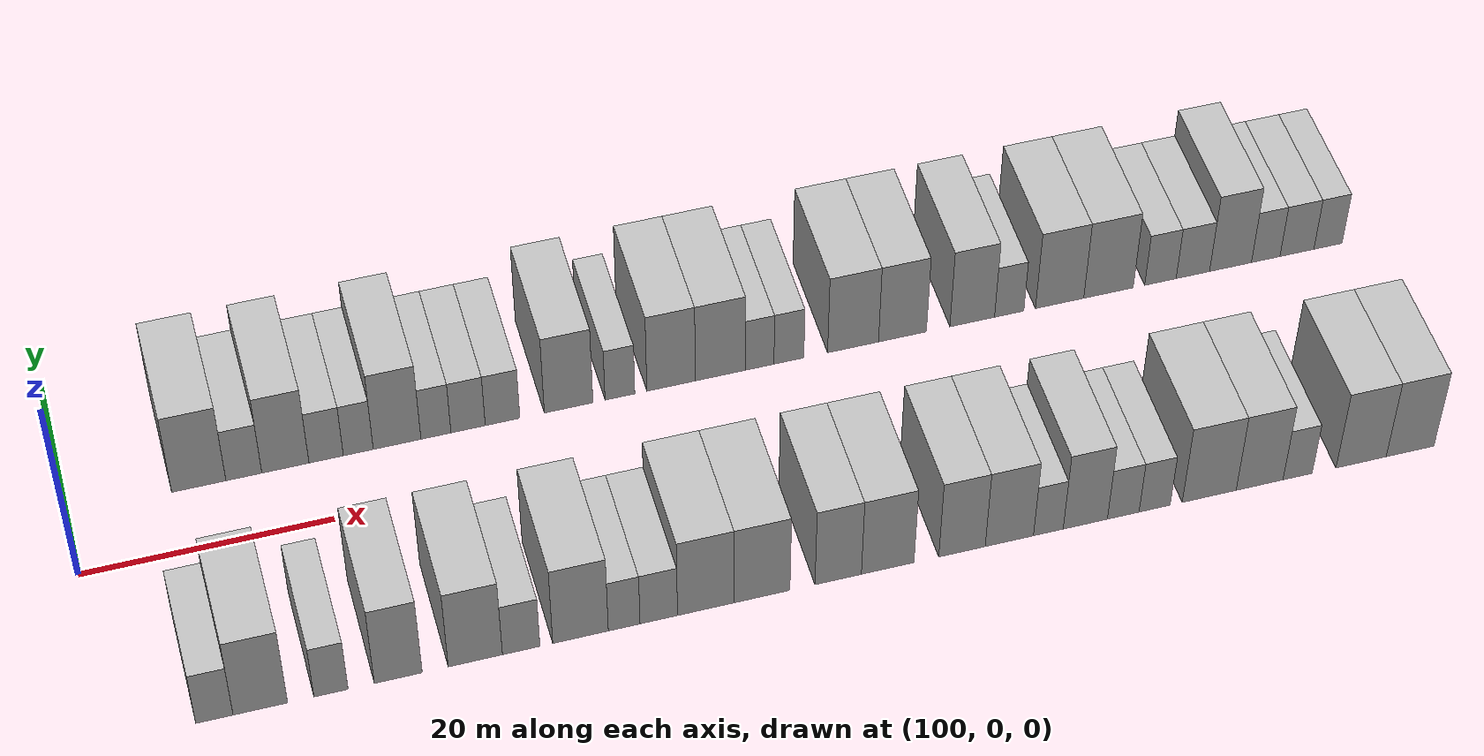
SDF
<sdf version="1.6">
 <world name="default">
  <model name="building_27">
   <static>1</static>
   <pose>110.3880 11.0000 0 0.000000 0.000000 1.570796</pose>
   <link name="link">
    <pose>0 0 4.50 0 0 0</pose>
    <collision name="collision"><geometry><box><size>10.0000 4.3013 9.0000</size></box></geometry></collision>
    <visual name="visual">
     <cast_shadows>0</cast_shadows>
     <geometry><box><size>10.0000 4.3013 9.0000</size></box></geometry>
     <material>
      <script>
       <uri>model://HANNAS_wall/materials/scripts</uri>
       <uri>model://HANNAS_wall/materials/textures</uri>
       <name>vrc/HANNAS_wall</name>
      </script>
     </material>
    </visual>
   </link>
  </model>
  <model name="building_28">
   <static>1</static>
   <pose>113.9667 11.0000 0 0.000000 0.000000 1.570796</pose>
   <link name="link">
    <pose>0 0 3.00 0 0 0</pose>
    <collision name="collision"><geometry><box><size>10.0000 2.8562 6.0000</size></box></geometry></collision>
    <visual name="visual">
     <cast_shadows>0</cast_shadows>
     <geometry><box><size>10.0000 2.8562 6.0000</size></box></geometry>
     <material>
      <script>
       <uri>model://HANNAS_wall/materials/scripts</uri>
       <uri>model://HANNAS_wall/materials/textures</uri>
       <name>vrc/HANNAS_wall</name>
      </script>
     </material>
    </visual>
   </link>
  </model>
  <model name="building_29">
   <static>1</static>
   <pose>117.2774 11.0000 0 0.000000 0.000000 1.570796</pose>
   <link name="link">
    <pose>0 0 4.50 0 0 0</pose>
    <collision name="collision"><geometry><box><size>10.0000 3.7653 9.0000</size></box></geometry></collision>
    <visual name="visual">
     <cast_shadows>0</cast_shadows>
     <geometry><box><size>10.0000 3.7653 9.0000</size></box></geometry>
     <material>
      <script>
       <uri>model://HANNAS_wall/materials/scripts</uri>
       <uri>model://HANNAS_wall/materials/textures</uri>
       <name>vrc/HANNAS_wall</name>
      </script>
     </material>
    </visual>
   </link>
  </model>
  <model name="building_30">
   <static>1</static>
   <pose>120.5377 11.0000 0 0.000000 0.000000 1.570796</pose>
   <link name="link">
    <pose>0 0 3.00 0 0 0</pose>
    <collision name="collision"><geometry><box><size>10.0000 2.7552 6.0000</size></box></geometry></collision>
    <visual name="visual">
     <cast_shadows>0</cast_shadows>
     <geometry><box><size>10.0000 2.7552 6.0000</size></box></geometry>
     <material>
      <script>
       <uri>model://HANNAS_wall/materials/scripts</uri>
       <uri>model://HANNAS_wall/materials/textures</uri>
       <name>vrc/HANNAS_wall</name>
      </script>
     </material>
    </visual>
   </link>
  </model>
  <model name="building_31">
   <static>1</static>
   <pose>123.1191 11.0000 0 0.000000 0.000000 1.570796</pose>
   <link name="link">
    <pose>0 0 3.00 0 0 0</pose>
    <collision name="collision"><geometry><box><size>10.0000 2.4076 6.0000</size></box></geometry></collision>
    <visual name="visual">
     <cast_shadows>0</cast_shadows>
     <geometry><box><size>10.0000 2.4076 6.0000</size></box></geometry>
     <material>
      <script>
       <uri>model://HANNAS_wall/materials/scripts</uri>
       <uri>model://HANNAS_wall/materials/textures</uri>
       <name>vrc/HANNAS_wall</name>
      </script>
     </material>
    </visual>
   </link>
  </model>
  <model name="building_32">
   <static>1</static>
   <pose>126.2458 11.0000 0 0.000000 0.000000 1.570796</pose>
   <link name="link">
    <pose>0 0 4.50 0 0 0</pose>
    <collision name="collision"><geometry><box><size>10.0000 3.8459 9.0000</size></box></geometry></collision>
    <visual name="visual">
     <cast_shadows>0</cast_shadows>
     <geometry><box><size>10.0000 3.8459 9.0000</size></box></geometry>
     <material>
      <script>
       <uri>model://HANNAS_wall/materials/scripts</uri>
       <uri>model://HANNAS_wall/materials/textures</uri>
       <name>vrc/HANNAS_wall</name>
      </script>
     </material>
    </visual>
   </link>
  </model>
  <model name="building_33">
   <static>1</static>
   <pose>129.3854 11.0000 0 0.000000 0.000000 1.570796</pose>
   <link name="link">
    <pose>0 0 3.00 0 0 0</pose>
    <collision name="collision"><geometry><box><size>10.0000 2.4332 6.0000</size></box></geometry></collision>
    <visual name="visual">
     <cast_shadows>0</cast_shadows>
     <geometry><box><size>10.0000 2.4332 6.0000</size></box></geometry>
     <material>
      <script>
       <uri>model://HANNAS_wall/materials/scripts</uri>
       <uri>model://HANNAS_wall/materials/textures</uri>
       <name>vrc/HANNAS_wall</name>
      </script>
     </material>
    </visual>
   </link>
  </model>
  <model name="building_34">
   <static>1</static>
   <pose>131.9970 11.0000 0 0.000000 0.000000 1.570796</pose>
   <link name="link">
    <pose>0 0 3.00 0 0 0</pose>
    <collision name="collision"><geometry><box><size>10.0000 2.7901 6.0000</size></box></geometry></collision>
    <visual name="visual">
     <cast_shadows>0</cast_shadows>
     <geometry><box><size>10.0000 2.7901 6.0000</size></box></geometry>
     <material>
      <script>
       <uri>model://HANNAS_wall/materials/scripts</uri>
       <uri>model://HANNAS_wall/materials/textures</uri>
       <name>vrc/HANNAS_wall</name>
      </script>
     </material>
    </visual>
   </link>
  </model>
  <model name="building_35">
   <static>1</static>
   <pose>134.8009 11.0000 0 0.000000 0.000000 1.570796</pose>
   <link name="link">
    <pose>0 0 3.00 0 0 0</pose>
    <collision name="collision"><geometry><box><size>10.0000 2.8178 6.0000</size></box></geometry></collision>
    <visual name="visual">
     <cast_shadows>0</cast_shadows>
     <geometry><box><size>10.0000 2.8178 6.0000</size></box></geometry>
     <material>
      <script>
       <uri>model://HANNAS_wall/materials/scripts</uri>
       <uri>model://HANNAS_wall/materials/textures</uri>
       <name>vrc/HANNAS_wall</name>
      </script>
     </material>
    </visual>
   </link>
  </model>
  <model name="building_36">
   <static>1</static>
   <pose>140.2035 11.0000 0 0.000000 0.000000 1.570796</pose>
   <link name="link">
    <pose>0 0 4.50 0 0 0</pose>
    <collision name="collision"><geometry><box><size>10.0000 3.9875 9.0000</size></box></geometry></collision>
    <visual name="visual">
     <cast_shadows>0</cast_shadows>
     <geometry><box><size>10.0000 3.9875 9.0000</size></box></geometry>
     <material>
      <script>
       <uri>model://HANNAS_wall/materials/scripts</uri>
       <uri>model://HANNAS_wall/materials/textures</uri>
       <name>vrc/HANNAS_wall</name>
      </script>
     </material>
    </visual>
   </link>
  </model>
  <model name="building_37">
   <static>1</static>
   <pose>144.4245 11.0000 0 0.000000 0.000000 1.570796</pose>
   <link name="link">
    <pose>0 0 3.00 0 0 0</pose>
    <collision name="collision"><geometry><box><size>10.0000 2.4544 6.0000</size></box></geometry></collision>
    <visual name="visual">
     <cast_shadows>0</cast_shadows>
     <geometry><box><size>10.0000 2.4544 6.0000</size></box></geometry>
     <material>
      <script>
       <uri>model://HANNAS_wall/materials/scripts</uri>
       <uri>model://HANNAS_wall/materials/textures</uri>
       <name>vrc/HANNAS_wall</name>
      </script>
     </material>
    </visual>
   </link>
  </model>
  <model name="building_38">
   <static>1</static>
   <pose>148.6582 11.0000 0 0.000000 0.000000 1.570796</pose>
   <link name="link">
    <pose>0 0 4.50 0 0 0</pose>
    <collision name="collision"><geometry><box><size>10.0000 4.0130 9.0000</size></box></geometry></collision>
    <visual name="visual">
     <cast_shadows>0</cast_shadows>
     <geometry><box><size>10.0000 4.0130 9.0000</size></box></geometry>
     <material>
      <script>
       <uri>model://HANNAS_wall/materials/scripts</uri>
       <uri>model://HANNAS_wall/materials/textures</uri>
       <name>vrc/HANNAS_wall</name>
      </script>
     </material>
    </visual>
   </link>
  </model>
  <model name="building_39">
   <static>1</static>
   <pose>152.7411 11.0000 0 0.000000 0.000000 1.570796</pose>
   <link name="link">
    <pose>0 0 4.50 0 0 0</pose>
    <collision name="collision"><geometry><box><size>10.0000 4.1529 9.0000</size></box></geometry></collision>
    <visual name="visual">
     <cast_shadows>0</cast_shadows>
     <geometry><box><size>10.0000 4.1529 9.0000</size></box></geometry>
     <material>
      <script>
       <uri>model://HANNAS_wall/materials/scripts</uri>
       <uri>model://HANNAS_wall/materials/textures</uri>
       <name>vrc/HANNAS_wall</name>
      </script>
     </material>
    </visual>
   </link>
  </model>
  <model name="building_40">
   <static>1</static>
   <pose>156.0200 11.0000 0 0.000000 0.000000 1.570796</pose>
   <link name="link">
    <pose>0 0 3.00 0 0 0</pose>
    <collision name="collision"><geometry><box><size>10.0000 2.4048 6.0000</size></box></geometry></collision>
    <visual name="visual">
     <cast_shadows>0</cast_shadows>
     <geometry><box><size>10.0000 2.4048 6.0000</size></box></geometry>
     <material>
      <script>
       <uri>model://HANNAS_wall/materials/scripts</uri>
       <uri>model://HANNAS_wall/materials/textures</uri>
       <name>vrc/HANNAS_wall</name>
      </script>
     </material>
    </visual>
   </link>
  </model>
  <model name="building_41">
   <static>1</static>
   <pose>158.4744 11.0000 0 0.000000 0.000000 1.570796</pose>
   <link name="link">
    <pose>0 0 3.00 0 0 0</pose>
    <collision name="collision"><geometry><box><size>10.0000 2.5041 6.0000</size></box></geometry></collision>
    <visual name="visual">
     <cast_shadows>0</cast_shadows>
     <geometry><box><size>10.0000 2.5041 6.0000</size></box></geometry>
     <material>
      <script>
       <uri>model://HANNAS_wall/materials/scripts</uri>
       <uri>model://HANNAS_wall/materials/textures</uri>
       <name>vrc/HANNAS_wall</name>
      </script>
     </material>
    </visual>
   </link>
  </model>
  <model name="building_42">
   <static>1</static>
   <pose>163.8748 11.0000 0 0.000000 0.000000 1.570796</pose>
   <link name="link">
    <pose>0 0 4.50 0 0 0</pose>
    <collision name="collision"><geometry><box><size>10.0000 4.2967 9.0000</size></box></geometry></collision>
    <visual name="visual">
     <cast_shadows>0</cast_shadows>
     <geometry><box><size>10.0000 4.2967 9.0000</size></box></geometry>
     <material>
      <script>
       <uri>model://HANNAS_wall/materials/scripts</uri>
       <uri>model://HANNAS_wall/materials/textures</uri>
       <name>vrc/HANNAS_wall</name>
      </script>
     </material>
    </visual>
   </link>
  </model>
  <model name="building_43">
   <static>1</static>
   <pose>168.0531 11.0000 0 0.000000 0.000000 1.570796</pose>
   <link name="link">
    <pose>0 0 4.50 0 0 0</pose>
    <collision name="collision"><geometry><box><size>10.0000 4.0599 9.0000</size></box></geometry></collision>
    <visual name="visual">
     <cast_shadows>0</cast_shadows>
     <geometry><box><size>10.0000 4.0599 9.0000</size></box></geometry>
     <material>
      <script>
       <uri>model://HANNAS_wall/materials/scripts</uri>
       <uri>model://HANNAS_wall/materials/textures</uri>
       <name>vrc/HANNAS_wall</name>
      </script>
     </material>
    </visual>
   </link>
  </model>
  <model name="building_44">
   <static>1</static>
   <pose>173.9898 11.0000 0 0.000000 0.000000 1.570796</pose>
   <link name="link">
    <pose>0 0 4.50 0 0 0</pose>
    <collision name="collision"><geometry><box><size>10.0000 3.8136 9.0000</size></box></geometry></collision>
    <visual name="visual">
     <cast_shadows>0</cast_shadows>
     <geometry><box><size>10.0000 3.8136 9.0000</size></box></geometry>
     <material>
      <script>
       <uri>model://HANNAS_wall/materials/scripts</uri>
       <uri>model://HANNAS_wall/materials/textures</uri>
       <name>vrc/HANNAS_wall</name>
      </script>
     </material>
    </visual>
   </link>
  </model>
  <model name="building_45">
   <static>1</static>
   <pose>177.1504 11.0000 0 0.000000 0.000000 1.570796</pose>
   <link name="link">
    <pose>0 0 3.00 0 0 0</pose>
    <collision name="collision"><geometry><box><size>10.0000 2.5077 6.0000</size></box></geometry></collision>
    <visual name="visual">
     <cast_shadows>0</cast_shadows>
     <geometry><box><size>10.0000 2.5077 6.0000</size></box></geometry>
     <material>
      <script>
       <uri>model://HANNAS_wall/materials/scripts</uri>
       <uri>model://HANNAS_wall/materials/textures</uri>
       <name>vrc/HANNAS_wall</name>
      </script>
     </material>
    </visual>
   </link>
  </model>
  <model name="building_46">
   <static>1</static>
   <pose>181.4870 11.0000 0 0.000000 0.000000 1.570796</pose>
   <link name="link">
    <pose>0 0 4.50 0 0 0</pose>
    <collision name="collision"><geometry><box><size>10.0000 4.1655 9.0000</size></box></geometry></collision>
    <visual name="visual">
     <cast_shadows>0</cast_shadows>
     <geometry><box><size>10.0000 4.1655 9.0000</size></box></geometry>
     <material>
      <script>
       <uri>model://HANNAS_wall/materials/scripts</uri>
       <uri>model://HANNAS_wall/materials/textures</uri>
       <name>vrc/HANNAS_wall</name>
      </script>
     </material>
    </visual>
   </link>
  </model>
  <model name="building_47">
   <static>1</static>
   <pose>185.7066 11.0000 0 0.000000 0.000000 1.570796</pose>
   <link name="link">
    <pose>0 0 4.50 0 0 0</pose>
    <collision name="collision"><geometry><box><size>10.0000 4.2737 9.0000</size></box></geometry></collision>
    <visual name="visual">
     <cast_shadows>0</cast_shadows>
     <geometry><box><size>10.0000 4.2737 9.0000</size></box></geometry>
     <material>
      <script>
       <uri>model://HANNAS_wall/materials/scripts</uri>
       <uri>model://HANNAS_wall/materials/textures</uri>
       <name>vrc/HANNAS_wall</name>
      </script>
     </material>
    </visual>
   </link>
  </model>
  <model name="building_48">
   <static>1</static>
   <pose>190.2126 11.0000 0 0.000000 0.000000 1.570796</pose>
   <link name="link">
    <pose>0 0 3.00 0 0 0</pose>
    <collision name="collision"><geometry><box><size>10.0000 2.7381 6.0000</size></box></geometry></collision>
    <visual name="visual">
     <cast_shadows>0</cast_shadows>
     <geometry><box><size>10.0000 2.7381 6.0000</size></box></geometry>
     <material>
      <script>
       <uri>model://HANNAS_wall/materials/scripts</uri>
       <uri>model://HANNAS_wall/materials/textures</uri>
       <name>vrc/HANNAS_wall</name>
      </script>
     </material>
    </visual>
   </link>
  </model>
  <model name="building_49">
   <static>1</static>
   <pose>193.0391 11.0000 0 0.000000 0.000000 1.570796</pose>
   <link name="link">
    <pose>0 0 3.00 0 0 0</pose>
    <collision name="collision"><geometry><box><size>10.0000 2.9150 6.0000</size></box></geometry></collision>
    <visual name="visual">
     <cast_shadows>0</cast_shadows>
     <geometry><box><size>10.0000 2.9150 6.0000</size></box></geometry>
     <material>
      <script>
       <uri>model://HANNAS_wall/materials/scripts</uri>
       <uri>model://HANNAS_wall/materials/textures</uri>
       <name>vrc/HANNAS_wall</name>
      </script>
     </material>
    </visual>
   </link>
  </model>
  <model name="building_50">
   <static>1</static>
   <pose>196.3330 11.0000 0 0.000000 0.000000 1.570796</pose>
   <link name="link">
    <pose>0 0 4.50 0 0 0</pose>
    <collision name="collision"><geometry><box><size>10.0000 3.6728 9.0000</size></box></geometry></collision>
    <visual name="visual">
     <cast_shadows>0</cast_shadows>
     <geometry><box><size>10.0000 3.6728 9.0000</size></box></geometry>
     <material>
      <script>
       <uri>model://HANNAS_wall/materials/scripts</uri>
       <uri>model://HANNAS_wall/materials/textures</uri>
       <name>vrc/HANNAS_wall</name>
      </script>
     </material>
    </visual>
   </link>
  </model>
  <model name="building_51">
   <static>1</static>
   <pose>199.4239 11.0000 0 0.000000 0.000000 1.570796</pose>
   <link name="link">
    <pose>0 0 3.00 0 0 0</pose>
    <collision name="collision"><geometry><box><size>10.0000 2.5091 6.0000</size></box></geometry></collision>
    <visual name="visual">
     <cast_shadows>0</cast_shadows>
     <geometry><box><size>10.0000 2.5091 6.0000</size></box></geometry>
     <material>
      <script>
       <uri>model://HANNAS_wall/materials/scripts</uri>
       <uri>model://HANNAS_wall/materials/textures</uri>
       <name>vrc/HANNAS_wall</name>
      </script>
     </material>
    </visual>
   </link>
  </model>
  <model name="building_52">
   <static>1</static>
   <pose>202.1742 11.0000 0 0.000000 0.000000 1.570796</pose>
   <link name="link">
    <pose>0 0 3.00 0 0 0</pose>
    <collision name="collision"><geometry><box><size>10.0000 2.9915 6.0000</size></box></geometry></collision>
    <visual name="visual">
     <cast_shadows>0</cast_shadows>
     <geometry><box><size>10.0000 2.9915 6.0000</size></box></geometry>
     <material>
      <script>
       <uri>model://HANNAS_wall/materials/scripts</uri>
       <uri>model://HANNAS_wall/materials/textures</uri>
       <name>vrc/HANNAS_wall</name>
      </script>
     </material>
    </visual>
   </link>
  </model>
  <model name="building_53">
   <static>1</static>
   <pose>204.9138 11.0000 0 0.000000 0.000000 1.570796</pose>
   <link name="link">
    <pose>0 0 3.00 0 0 0</pose>
    <collision name="collision"><geometry><box><size>10.0000 2.4877 6.0000</size></box></geometry></collision>
    <visual name="visual">
     <cast_shadows>0</cast_shadows>
     <geometry><box><size>10.0000 2.4877 6.0000</size></box></geometry>
     <material>
      <script>
       <uri>model://HANNAS_wall/materials/scripts</uri>
       <uri>model://HANNAS_wall/materials/textures</uri>
       <name>vrc/HANNAS_wall</name>
      </script>
     </material>
    </visual>
   </link>
  </model>
  <model name="building_78">
   <static>1</static>
   <pose>107.6345 -11.0000 0 0.000000 0.000000 1.570796</pose>
   <link name="link">
    <pose>0 0 3.00 0 0 0</pose>
    <collision name="collision"><geometry><box><size>10.0000 2.8116 6.0000</size></box></geometry></collision>
    <visual name="visual">
     <cast_shadows>0</cast_shadows>
     <geometry><box><size>10.0000 2.8116 6.0000</size></box></geometry>
     <material>
      <script>
       <uri>model://HANNAS_wall/materials/scripts</uri>
       <uri>model://HANNAS_wall/materials/textures</uri>
       <name>vrc/HANNAS_wall</name>
      </script>
     </material>
    </visual>
   </link>
  </model>
  <model name="building_79">
   <static>1</static>
   <pose>111.1022 -11.0000 0 0.000000 0.000000 1.570796</pose>
   <link name="link">
    <pose>0 0 4.50 0 0 0</pose>
    <collision name="collision"><geometry><box><size>10.0000 4.1238 9.0000</size></box></geometry></collision>
    <visual name="visual">
     <cast_shadows>0</cast_shadows>
     <geometry><box><size>10.0000 4.1238 9.0000</size></box></geometry>
     <material>
      <script>
       <uri>model://HANNAS_wall/materials/scripts</uri>
       <uri>model://HANNAS_wall/materials/textures</uri>
       <name>vrc/HANNAS_wall</name>
      </script>
     </material>
    </visual>
   </link>
  </model>
  <model name="building_80">
   <static>1</static>
   <pose>116.4665 -11.0000 0 0.000000 0.000000 1.570796</pose>
   <link name="link">
    <pose>0 0 3.00 0 0 0</pose>
    <collision name="collision"><geometry><box><size>10.0000 2.6050 6.0000</size></box></geometry></collision>
    <visual name="visual">
     <cast_shadows>0</cast_shadows>
     <geometry><box><size>10.0000 2.6050 6.0000</size></box></geometry>
     <material>
      <script>
       <uri>model://HANNAS_wall/materials/scripts</uri>
       <uri>model://HANNAS_wall/materials/textures</uri>
       <name>vrc/HANNAS_wall</name>
      </script>
     </material>
    </visual>
   </link>
  </model>
  <model name="building_81">
   <static>1</static>
   <pose>121.6064 -11.0000 0 0.000000 0.000000 1.570796</pose>
   <link name="link">
    <pose>0 0 4.50 0 0 0</pose>
    <collision name="collision"><geometry><box><size>10.0000 3.6747 9.0000</size></box></geometry></collision>
    <visual name="visual">
     <cast_shadows>0</cast_shadows>
     <geometry><box><size>10.0000 3.6747 9.0000</size></box></geometry>
     <material>
      <script>
       <uri>model://HANNAS_wall/materials/scripts</uri>
       <uri>model://HANNAS_wall/materials/textures</uri>
       <name>vrc/HANNAS_wall</name>
      </script>
     </material>
    </visual>
   </link>
  </model>
  <model name="building_82">
   <static>1</static>
   <pose>127.5378 -11.0000 0 0.000000 0.000000 1.570796</pose>
   <link name="link">
    <pose>0 0 4.50 0 0 0</pose>
    <collision name="collision"><geometry><box><size>10.0000 4.1883 9.0000</size></box></geometry></collision>
    <visual name="visual">
     <cast_shadows>0</cast_shadows>
     <geometry><box><size>10.0000 4.1883 9.0000</size></box></geometry>
     <material>
      <script>
       <uri>model://HANNAS_wall/materials/scripts</uri>
       <uri>model://HANNAS_wall/materials/textures</uri>
       <name>vrc/HANNAS_wall</name>
      </script>
     </material>
    </visual>
   </link>
  </model>
  <model name="building_83">
   <static>1</static>
   <pose>131.0841 -11.0000 0 0.000000 0.000000 1.570796</pose>
   <link name="link">
    <pose>0 0 3.00 0 0 0</pose>
    <collision name="collision"><geometry><box><size>10.0000 2.9042 6.0000</size></box></geometry></collision>
    <visual name="visual">
     <cast_shadows>0</cast_shadows>
     <geometry><box><size>10.0000 2.9042 6.0000</size></box></geometry>
     <material>
      <script>
       <uri>model://HANNAS_wall/materials/scripts</uri>
       <uri>model://HANNAS_wall/materials/textures</uri>
       <name>vrc/HANNAS_wall</name>
      </script>
     </material>
    </visual>
   </link>
  </model>
  <model name="building_84">
   <static>1</static>
   <pose>135.7041 -11.0000 0 0.000000 0.000000 1.570796</pose>
   <link name="link">
    <pose>0 0 4.50 0 0 0</pose>
    <collision name="collision"><geometry><box><size>10.0000 4.3359 9.0000</size></box></geometry></collision>
    <visual name="visual">
     <cast_shadows>0</cast_shadows>
     <geometry><box><size>10.0000 4.3359 9.0000</size></box></geometry>
     <material>
      <script>
       <uri>model://HANNAS_wall/materials/scripts</uri>
       <uri>model://HANNAS_wall/materials/textures</uri>
       <name>vrc/HANNAS_wall</name>
      </script>
     </material>
    </visual>
   </link>
  </model>
  <model name="building_85">
   <static>1</static>
   <pose>139.1142 -11.0000 0 0.000000 0.000000 1.570796</pose>
   <link name="link">
    <pose>0 0 3.00 0 0 0</pose>
    <collision name="collision"><geometry><box><size>10.0000 2.4841 6.0000</size></box></geometry></collision>
    <visual name="visual">
     <cast_shadows>0</cast_shadows>
     <geometry><box><size>10.0000 2.4841 6.0000</size></box></geometry>
     <material>
      <script>
       <uri>model://HANNAS_wall/materials/scripts</uri>
       <uri>model://HANNAS_wall/materials/textures</uri>
       <name>vrc/HANNAS_wall</name>
      </script>
     </material>
    </visual>
   </link>
  </model>
  <model name="building_86">
   <static>1</static>
   <pose>141.8294 -11.0000 0 0.000000 0.000000 1.570796</pose>
   <link name="link">
    <pose>0 0 3.00 0 0 0</pose>
    <collision name="collision"><geometry><box><size>10.0000 2.9464 6.0000</size></box></geometry></collision>
    <visual name="visual">
     <cast_shadows>0</cast_shadows>
     <geometry><box><size>10.0000 2.9464 6.0000</size></box></geometry>
     <material>
      <script>
       <uri>model://HANNAS_wall/materials/scripts</uri>
       <uri>model://HANNAS_wall/materials/textures</uri>
       <name>vrc/HANNAS_wall</name>
      </script>
     </material>
    </visual>
   </link>
  </model>
  <model name="building_87">
   <static>1</static>
   <pose>145.5312 -11.0000 0 0.000000 0.000000 1.570796</pose>
   <link name="link">
    <pose>0 0 4.50 0 0 0</pose>
    <collision name="collision"><geometry><box><size>10.0000 4.4570 9.0000</size></box></geometry></collision>
    <visual name="visual">
     <cast_shadows>0</cast_shadows>
     <geometry><box><size>10.0000 4.4570 9.0000</size></box></geometry>
     <material>
      <script>
       <uri>model://HANNAS_wall/materials/scripts</uri>
       <uri>model://HANNAS_wall/materials/textures</uri>
       <name>vrc/HANNAS_wall</name>
      </script>
     </material>
    </visual>
   </link>
  </model>
  <model name="building_88">
   <static>1</static>
   <pose>149.9814 -11.0000 0 0.000000 0.000000 1.570796</pose>
   <link name="link">
    <pose>0 0 4.50 0 0 0</pose>
    <collision name="collision"><geometry><box><size>10.0000 4.4434 9.0000</size></box></geometry></collision>
    <visual name="visual">
     <cast_shadows>0</cast_shadows>
     <geometry><box><size>10.0000 4.4434 9.0000</size></box></geometry>
     <material>
      <script>
       <uri>model://HANNAS_wall/materials/scripts</uri>
       <uri>model://HANNAS_wall/materials/textures</uri>
       <name>vrc/HANNAS_wall</name>
      </script>
     </material>
    </visual>
   </link>
  </model>
  <model name="building_89">
   <static>1</static>
   <pose>156.0609 -11.0000 0 0.000000 0.000000 1.570796</pose>
   <link name="link">
    <pose>0 0 4.50 0 0 0</pose>
    <collision name="collision"><geometry><box><size>10.0000 3.7155 9.0000</size></box></geometry></collision>
    <visual name="visual">
     <cast_shadows>0</cast_shadows>
     <geometry><box><size>10.0000 3.7155 9.0000</size></box></geometry>
     <material>
      <script>
       <uri>model://HANNAS_wall/materials/scripts</uri>
       <uri>model://HANNAS_wall/materials/textures</uri>
       <name>vrc/HANNAS_wall</name>
      </script>
     </material>
    </visual>
   </link>
  </model>
  <model name="building_90">
   <static>1</static>
   <pose>160.0319 -11.0000 0 0.000000 0.000000 1.570796</pose>
   <link name="link">
    <pose>0 0 4.50 0 0 0</pose>
    <collision name="collision"><geometry><box><size>10.0000 4.2266 9.0000</size></box></geometry></collision>
    <visual name="visual">
     <cast_shadows>0</cast_shadows>
     <geometry><box><size>10.0000 4.2266 9.0000</size></box></geometry>
     <material>
      <script>
       <uri>model://HANNAS_wall/materials/scripts</uri>
       <uri>model://HANNAS_wall/materials/textures</uri>
       <name>vrc/HANNAS_wall</name>
      </script>
     </material>
    </visual>
   </link>
  </model>
  <model name="building_91">
   <static>1</static>
   <pose>166.0291 -11.0000 0 0.000000 0.000000 1.570796</pose>
   <link name="link">
    <pose>0 0 4.50 0 0 0</pose>
    <collision name="collision"><geometry><box><size>10.0000 3.7678 9.0000</size></box></geometry></collision>
    <visual name="visual">
     <cast_shadows>0</cast_shadows>
     <geometry><box><size>10.0000 3.7678 9.0000</size></box></geometry>
     <material>
      <script>
       <uri>model://HANNAS_wall/materials/scripts</uri>
       <uri>model://HANNAS_wall/materials/textures</uri>
       <name>vrc/HANNAS_wall</name>
      </script>
     </material>
    </visual>
   </link>
  </model>
  <model name="building_92">
   <static>1</static>
   <pose>169.8773 -11.0000 0 0.000000 0.000000 1.570796</pose>
   <link name="link">
    <pose>0 0 4.50 0 0 0</pose>
    <collision name="collision"><geometry><box><size>10.0000 3.9286 9.0000</size></box></geometry></collision>
    <visual name="visual">
     <cast_shadows>0</cast_shadows>
     <geometry><box><size>10.0000 3.9286 9.0000</size></box></geometry>
     <material>
      <script>
       <uri>model://HANNAS_wall/materials/scripts</uri>
       <uri>model://HANNAS_wall/materials/textures</uri>
       <name>vrc/HANNAS_wall</name>
      </script>
     </material>
    </visual>
   </link>
  </model>
  <model name="building_93">
   <static>1</static>
   <pose>173.0546 -11.0000 0 0.000000 0.000000 1.570796</pose>
   <link name="link">
    <pose>0 0 3.00 0 0 0</pose>
    <collision name="collision"><geometry><box><size>10.0000 2.4258 6.0000</size></box></geometry></collision>
    <visual name="visual">
     <cast_shadows>0</cast_shadows>
     <geometry><box><size>10.0000 2.4258 6.0000</size></box></geometry>
     <material>
      <script>
       <uri>model://HANNAS_wall/materials/scripts</uri>
       <uri>model://HANNAS_wall/materials/textures</uri>
       <name>vrc/HANNAS_wall</name>
      </script>
     </material>
    </visual>
   </link>
  </model>
  <model name="building_94">
   <static>1</static>
   <pose>176.0807 -11.0000 0 0.000000 0.000000 1.570796</pose>
   <link name="link">
    <pose>0 0 4.50 0 0 0</pose>
    <collision name="collision"><geometry><box><size>10.0000 3.6265 9.0000</size></box></geometry></collision>
    <visual name="visual">
     <cast_shadows>0</cast_shadows>
     <geometry><box><size>10.0000 3.6265 9.0000</size></box></geometry>
     <material>
      <script>
       <uri>model://HANNAS_wall/materials/scripts</uri>
       <uri>model://HANNAS_wall/materials/textures</uri>
       <name>vrc/HANNAS_wall</name>
      </script>
     </material>
    </visual>
   </link>
  </model>
  <model name="building_95">
   <static>1</static>
   <pose>179.1977 -11.0000 0 0.000000 0.000000 1.570796</pose>
   <link name="link">
    <pose>0 0 3.00 0 0 0</pose>
    <collision name="collision"><geometry><box><size>10.0000 2.6074 6.0000</size></box></geometry></collision>
    <visual name="visual">
     <cast_shadows>0</cast_shadows>
     <geometry><box><size>10.0000 2.6074 6.0000</size></box></geometry>
     <material>
      <script>
       <uri>model://HANNAS_wall/materials/scripts</uri>
       <uri>model://HANNAS_wall/materials/textures</uri>
       <name>vrc/HANNAS_wall</name>
      </script>
     </material>
    </visual>
   </link>
  </model>
  <model name="building_96">
   <static>1</static>
   <pose>181.7837 -11.0000 0 0.000000 0.000000 1.570796</pose>
   <link name="link">
    <pose>0 0 3.00 0 0 0</pose>
    <collision name="collision"><geometry><box><size>10.0000 2.5646 6.0000</size></box></geometry></collision>
    <visual name="visual">
     <cast_shadows>0</cast_shadows>
     <geometry><box><size>10.0000 2.5646 6.0000</size></box></geometry>
     <material>
      <script>
       <uri>model://HANNAS_wall/materials/scripts</uri>
       <uri>model://HANNAS_wall/materials/textures</uri>
       <name>vrc/HANNAS_wall</name>
      </script>
     </material>
    </visual>
   </link>
  </model>
  <model name="building_97">
   <static>1</static>
   <pose>186.3058 -11.0000 0 0.000000 0.000000 1.570796</pose>
   <link name="link">
    <pose>0 0 4.50 0 0 0</pose>
    <collision name="collision"><geometry><box><size>10.0000 4.4797 9.0000</size></box></geometry></collision>
    <visual name="visual">
     <cast_shadows>0</cast_shadows>
     <geometry><box><size>10.0000 4.4797 9.0000</size></box></geometry>
     <material>
      <script>
       <uri>model://HANNAS_wall/materials/scripts</uri>
       <uri>model://HANNAS_wall/materials/textures</uri>
       <name>vrc/HANNAS_wall</name>
      </script>
     </material>
    </visual>
   </link>
  </model>
  <model name="building_98">
   <static>1</static>
   <pose>190.5002 -11.0000 0 0.000000 0.000000 1.570796</pose>
   <link name="link">
    <pose>0 0 4.50 0 0 0</pose>
    <collision name="collision"><geometry><box><size>10.0000 3.9093 9.0000</size></box></geometry></collision>
    <visual name="visual">
     <cast_shadows>0</cast_shadows>
     <geometry><box><size>10.0000 3.9093 9.0000</size></box></geometry>
     <material>
      <script>
       <uri>model://HANNAS_wall/materials/scripts</uri>
       <uri>model://HANNAS_wall/materials/textures</uri>
       <name>vrc/HANNAS_wall</name>
      </script>
     </material>
    </visual>
   </link>
  </model>
  <model name="building_99">
   <static>1</static>
   <pose>193.6771 -11.0000 0 0.000000 0.000000 1.570796</pose>
   <link name="link">
    <pose>0 0 3.00 0 0 0</pose>
    <collision name="collision"><geometry><box><size>10.0000 2.4444 6.0000</size></box></geometry></collision>
    <visual name="visual">
     <cast_shadows>0</cast_shadows>
     <geometry><box><size>10.0000 2.4444 6.0000</size></box></geometry>
     <material>
      <script>
       <uri>model://HANNAS_wall/materials/scripts</uri>
       <uri>model://HANNAS_wall/materials/textures</uri>
       <name>vrc/HANNAS_wall</name>
      </script>
     </material>
    </visual>
   </link>
  </model>
  <model name="building_100">
   <static>1</static>
   <pose>199.0163 -11.0000 0 0.000000 0.000000 1.570796</pose>
   <link name="link">
    <pose>0 0 4.50 0 0 0</pose>
    <collision name="collision"><geometry><box><size>10.0000 4.2342 9.0000</size></box></geometry></collision>
    <visual name="visual">
     <cast_shadows>0</cast_shadows>
     <geometry><box><size>10.0000 4.2342 9.0000</size></box></geometry>
     <material>
      <script>
       <uri>model://HANNAS_wall/materials/scripts</uri>
       <uri>model://HANNAS_wall/materials/textures</uri>
       <name>vrc/HANNAS_wall</name>
      </script>
     </material>
    </visual>
   </link>
  </model>
  <model name="building_101">
   <static>1</static>
   <pose>203.1557 -11.0000 0 0.000000 0.000000 1.570796</pose>
   <link name="link">
    <pose>0 0 4.50 0 0 0</pose>
    <collision name="collision"><geometry><box><size>10.0000 4.0446 9.0000</size></box></geometry></collision>
    <visual name="visual">
     <cast_shadows>0</cast_shadows>
     <geometry><box><size>10.0000 4.0446 9.0000</size></box></geometry>
     <material>
      <script>
       <uri>model://HANNAS_wall/materials/scripts</uri>
       <uri>model://HANNAS_wall/materials/textures</uri>
       <name>vrc/HANNAS_wall</name>
      </script>
     </material>
    </visual>
   </link>
  </model>
 </world>
</sdf>
